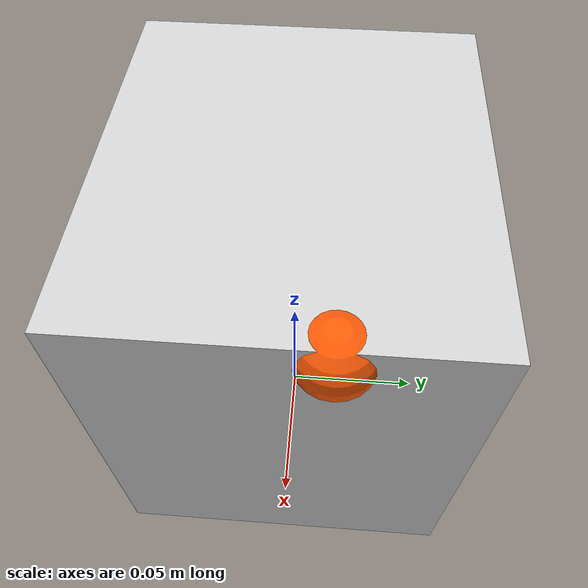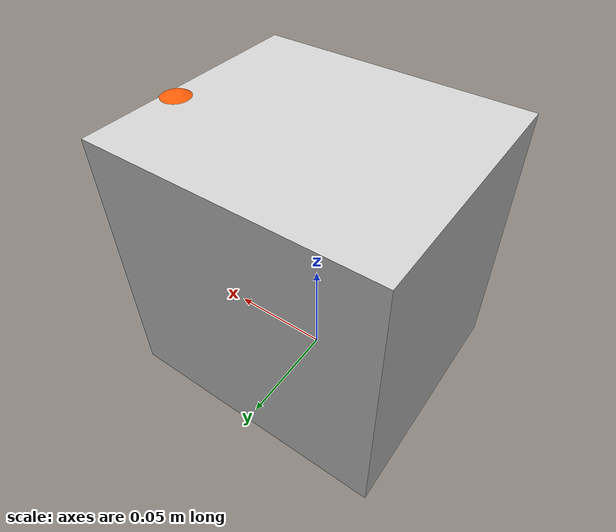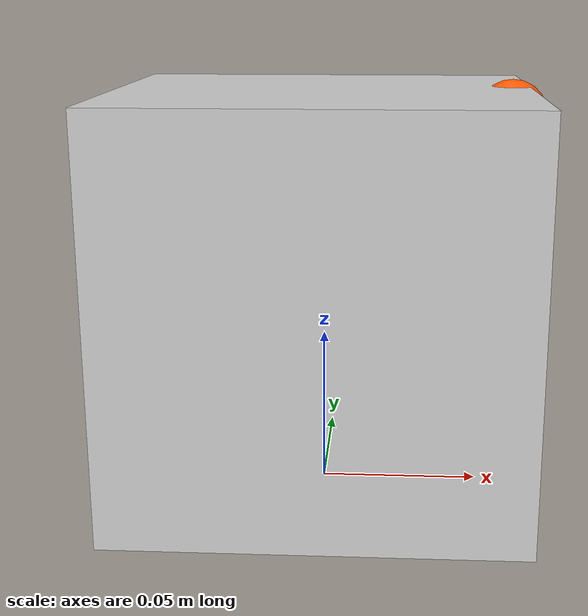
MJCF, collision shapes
<mujoco model="custom_obvious_mesh_cartoon_bomb">
  <asset>
    <mesh name="visual_mesh" file="bomb_body.obj" scale="0.8 0.8 0.8" />
  </asset>
  <worldbody>
    <body>
      <body name="object">
        <geom conaffinity="0" contype="0" group="1" mesh="visual_mesh" rgba="0.01 0.01 0.012 1" type="mesh" />
        <geom conaffinity="0" contype="0" group="1" fromto="0.020 0 0.084 0.054 0.012 0.116" rgba="0.08 0.055 0.025 1" size="0.0048" type="capsule" />
        <geom conaffinity="0" contype="0" group="1" pos="0.059 0.014 0.119" rgba="1.0 0.35 0.02 1" size="0.0112" type="sphere" />
        <geom
          density="100"
          friction="0.95 0.3 0.1"
          group="0"
          pos="0.0000 0.0000 0.0640"
          rgba="0.8 0.8 0.8 0.0"
          size="0.0640 0.0560 0.0640"
          type="box"
        />
        <geom
          name="reg_bbox"
          conaffinity="0"
          contype="0"
          group="3"
          pos="0.0000 0.0000 0.0640"
          rgba="0 0 0 0"
          size="0.0640 0.0560 0.0640"
          type="box"
        />
      </body>
      <site rgba="0 0 0 0" size="0.005" pos="0 0 0" name="bottom_site" />
      <site rgba="0 0 0 0" size="0.005" pos="0 0 0.1280" name="top_site" />
      <site rgba="0 0 0 0" size="0.005" pos="0.0640 0.0640 0" name="horizontal_radius_site" />
    </body>
  </worldbody>
</mujoco>
